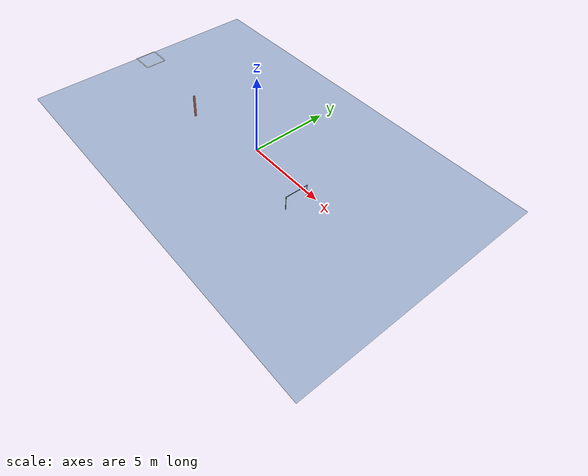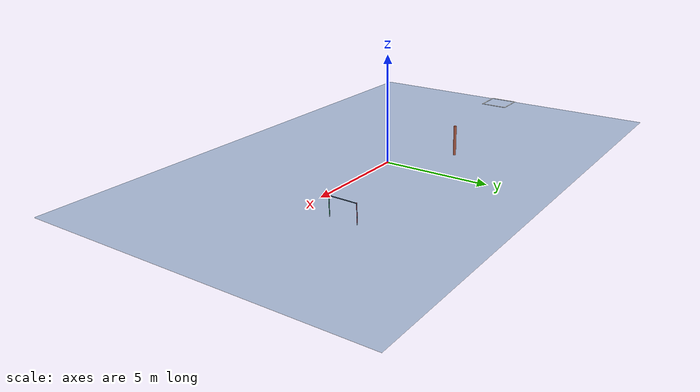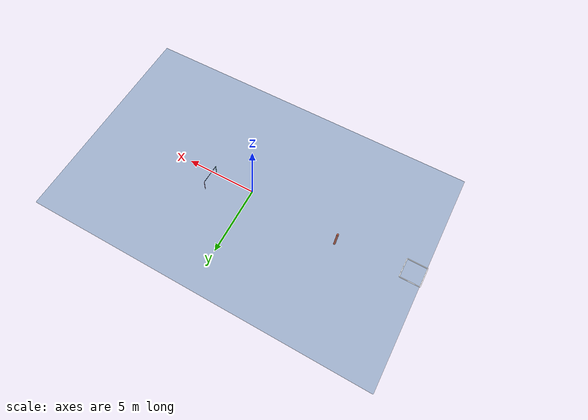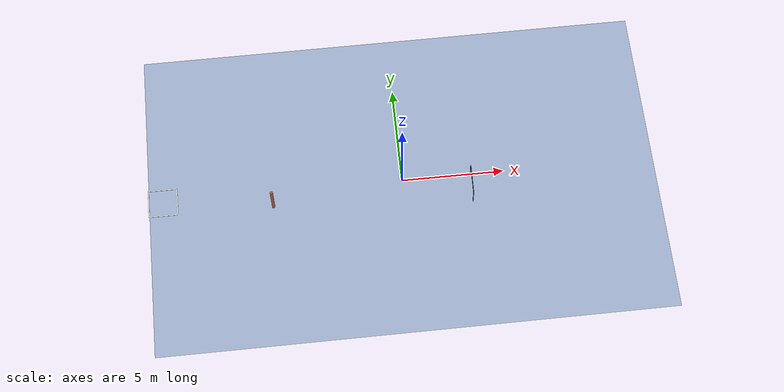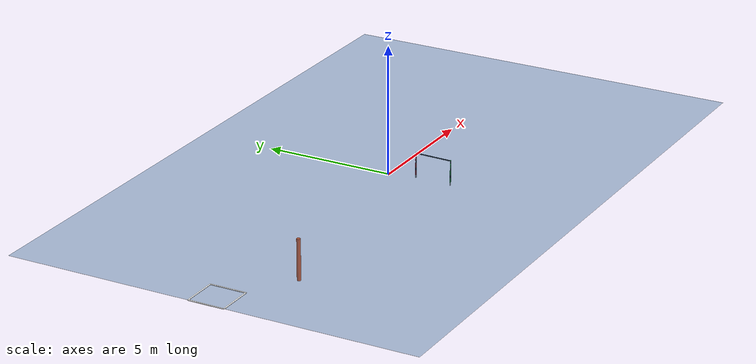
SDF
<sdf version="1.8">
 <world name="sauvc_competition_world">
  <plugin filename="gz-sim-physics-system" name="gz::sim::systems::Physics"/>
  <plugin filename="gz-sim-user-commands-system" name="gz::sim::systems::UserCommands"/>
  <plugin filename="gz-sim-scene-broadcaster-system" name="gz::sim::systems::SceneBroadcaster"/>
  <plugin filename="gz-sim-sensors-system" name="gz::sim::systems::Sensors">
   <render_engine>ogre2</render_engine>
  </plugin>
  <plugin filename="libgz-sim-imu-system.so" name="gz::sim::systems::Imu"/>
  <plugin filename="gz-sim-buoyancy-system" name="gz::sim::systems::Buoyancy">
   <graded_buoyancy>
    <default_density>1000</default_density>
    <density_change><above_depth>0</above_depth><density>1.2</density></density_change>
   </graded_buoyancy>
   <enable>bluerov2</enable>
  </plugin>
  <gravity>0 0 -9.81</gravity>
  <magnetic_field>6e-6 2.3e-5 -4.2e-5</magnetic_field>
  <atmosphere type="adiabatic"/>
  <scene>
   <ambient>0.3 0.4 0.5 1</ambient>
   <background>0.1 0.3 0.5 1</background>
   <shadows>true</shadows>
   <fog><color>0.2 0.4 0.5 1</color><type>linear</type><start>1</start><end>30</end><density>0.02</density></fog>
  </scene>
  <physics name="default" type="dart">
   <max_step_size>0.001</max_step_size>
   <real_time_factor>1.0</real_time_factor>
   <real_time_update_rate>1000</real_time_update_rate>
  </physics>
  <light type="directional" name="sun">
   <pose>0 0 10 0 0 0</pose>
   <diffuse>0.8 0.8 0.8 1</diffuse>
   <specular>0.2 0.2 0.2 1</specular>
   <direction>-0.5 0.1 -0.9</direction>
  </light>
  <light type="directional" name="underwater_light">
   <cast_shadows>false</cast_shadows>
   <pose>0 0 5 0 0 0</pose>
   <diffuse>0.6 0.7 0.8 1</diffuse>
   <specular>0.3 0.3 0.4 1</specular>
   <direction>0 0.2 -1</direction>
  </light>
  <model name="water_surface">
   <static>true</static>
   <link name="water_link">
    <visual name="water_visual">
     <geometry><box><size>25 16 0.01</size></box></geometry>
     <material>
      <ambient>0.1 0.3 0.5 0.6</ambient>
      <diffuse>0.2 0.4 0.6 0.4</diffuse>
      <specular>0.8 0.8 0.8 1</specular>
     </material>
     <transparency>0.5</transparency>
    </visual>
   </link>
  </model>
  <include>
   <uri>model://starting_zone</uri>
   <name>starting_zone</name>
   <pose>-11.83 0 0 0 0 0</pose>
   <static>true</static>
  </include>
  <include>
   <uri>model://final_gate</uri>
   <name>final_gate</name>
   <pose>3.5 0 -1.6 0 0 -1.6</pose>
   <static>true</static>
  </include>
  <include>
   <uri>model://orange_flare</uri>
   <name>orange_flare</name>
   <pose>-6.5 0 -1.6 0 0 0</pose>
   <static>true</static>
  </include>
 </world>
</sdf>

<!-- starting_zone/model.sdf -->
<sdf version="1.8">
  <!-- SAUVC 2026 Starting Zone
       140cm x 140cm marker at water surface
       Semi-transparent orange
  -->
  <model name="starting_zone">
    <static>true</static>

    <link name="marker">
      <pose>0 0 0.01 0 0 0</pose>
      <inertial>
        <mass>0.5</mass>
        <inertia>
          <ixx>0.01</ixx>
          <ixy>0</ixy>
          <ixz>0</ixz>
          <iyy>0.01</iyy>
          <iyz>0</iyz>
          <izz>0.01</izz>
        </inertia>
      </inertial>

      <!-- Outer frame -->
      <visual name="frame_north">
        <pose>0 0.7 0 0 0 0</pose>
        <geometry>
          <box>
            <size>1.4 0.05 0.02</size>
          </box>
        </geometry>
        <material>
          <ambient>1 1 1 1</ambient>
          <diffuse>1 1 1 1</diffuse>
        </material>
      </visual>

      <visual name="frame_south">
        <pose>0 -0.7 0 0 0 0</pose>
        <geometry>
          <box>
            <size>1.4 0.05 0.02</size>
          </box>
        </geometry>
        <material>
          <ambient>1 1 1 1</ambient>
          <diffuse>1 1 1 1</diffuse>
        </material>
      </visual>

      <visual name="frame_east">
        <pose>0.7 0 0 0 0 0</pose>
        <geometry>
          <box>
            <size>0.05 1.4 0.02</size>
          </box>
        </geometry>
        <material>
          <ambient>1 1 1 1</ambient>
          <diffuse>1 1 1 1</diffuse>
        </material>
      </visual>

      <visual name="frame_west">
        <pose>-0.7 0 0 0 0 0</pose>
        <geometry>
          <box>
            <size>0.05 1.4 0.02</size>
          </box>
        </geometry>
        <material>
          <ambient>1 1 1 1</ambient>
          <diffuse>1 1 1 1</diffuse>
        </material>
      </visual>
    </link>

  </model>
</sdf>

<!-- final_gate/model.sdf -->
<sdf version='1.7'>
  <model name='gate'>
    <link name='link_0'>
      <inertial>
        <mass>1</mass>
        <inertia>
          <ixx>0.145833</ixx>
          <ixy>0</ixy>
          <ixz>0</ixz>
          <iyy>0.145833</iyy>
          <iyz>0</iyz>
          <izz>0.125</izz>
        </inertia>
        <pose>0 0 0 0 -0 0</pose>
      </inertial>
      <pose>-0.75 0 0.5 0 -0 0</pose>
      <gravity>1</gravity>
      <self_collide>0</self_collide>
      <kinematic>0</kinematic>
      <enable_wind>0</enable_wind>
      <visual name='visual'>
        <pose>0 0 0 0 -0 0</pose>
        <geometry>
          <cylinder>
            <radius>0.02</radius>
            <length>1.0</length>
          </cylinder>
        </geometry>
        <material>
          <lighting>1</lighting>
          <script>
            <uri>file://media/materials/scripts/gazebo.material</uri>
            <name>Gazebo/Black</name>
          </script>
          <shader type='pixel'>
            <normal_map>__default__</normal_map>
          </shader>
          <ambient>0.5 0.1 0.1 1</ambient>
          <diffuse>1 0.2 0.2 1</diffuse>
          <specular>0.01 0.01 0.01 1</specular>
          <emissive>0 0 0 1</emissive>
        </material>
        <transparency>0</transparency>
        <cast_shadows>1</cast_shadows>
      </visual>
      <visual name='ModelPreview_4-link_0-visual_0'>
        <pose>0 0 -0.45 0 -0 0</pose>
        <geometry>
          <cylinder>
            <radius>0.021</radius>
            <length>0.1</length>
          </cylinder>
        </geometry>
        <material>
          <lighting>1</lighting>
          <script>
            <uri>file://media/materials/scripts/gazebo.material</uri>
            <name>Gazebo/White</name>
          </script>
          <shader type='pixel'>
            <normal_map>__default__</normal_map>
          </shader>
          <ambient>0.05 0.05 0.05 1</ambient>
          <diffuse>0.1 0.1 0.1 1</diffuse>
          <specular>0.01 0.01 0.01 1</specular>
          <emissive>0 0 0 1</emissive>
        </material>
        <transparency>0</transparency>
        <cast_shadows>1</cast_shadows>
      </visual>
      <visual name='ModelPreview_4-link_0-visual_1'>
        <pose>0 0 -0.3 0 -0 0</pose>
        <geometry>
          <cylinder>
            <radius>0.021</radius>
            <length>0.2</length>
          </cylinder>
        </geometry>
        <material>
          <lighting>1</lighting>
          <script>
            <uri>file://media/materials/scripts/gazebo.material</uri>
            <name>Gazebo/Red</name>
          </script>
          <shader type='pixel'>
            <normal_map>__default__</normal_map>
          </shader>
          <ambient>0.05 0.05 0.05 1</ambient>
          <diffuse>0.1 0.1 0.1 1</diffuse>
          <specular>0.01 0.01 0.01 1</specular>
          <emissive>0 0 0 1</emissive>
        </material>
        <transparency>0</transparency>
        <cast_shadows>1</cast_shadows>
      </visual>
      <visual name='ModelPreview_1-link_0-visual_2'>
        <pose>0 0 0 0 -0 0</pose>
        <geometry>
          <cylinder>
            <radius>0.021</radius>
            <length>0.2</length>
          </cylinder>
        </geometry>
        <material>
          <lighting>1</lighting>
          <script>
            <uri>file://media/materials/scripts/gazebo.material</uri>
            <name>Gazebo/Red</name>
          </script>
          <shader type='pixel'>
            <normal_map>__default__</normal_map>
          </shader>
          <ambient>0.05 0.05 0.05 1</ambient>
          <diffuse>0.1 0.1 0.1 1</diffuse>
          <specular>0.01 0.01 0.01 1</specular>
          <emissive>0 0 0 1</emissive>
        </material>
        <transparency>0</transparency>
        <cast_shadows>1</cast_shadows>
      </visual>
      <visual name='ModelPreview_4-link_0-visual_3'>
        <pose>0 0 0.3 0 -0 0</pose>
        <geometry>
          <cylinder>
            <radius>0.021</radius>
            <length>0.2</length>
          </cylinder>
        </geometry>
        <material>
          <lighting>1</lighting>
          <script>
            <uri>file://media/materials/scripts/gazebo.material</uri>
            <name>Gazebo/Red</name>
          </script>
          <shader type='pixel'>
            <normal_map>__default__</normal_map>
          </shader>
          <ambient>0.05 0.05 0.05 1</ambient>
          <diffuse>0.1 0.1 0.1 1</diffuse>
          <specular>0.01 0.01 0.01 1</specular>
          <emissive>0 0 0 1</emissive>
        </material>
        <transparency>0</transparency>
        <cast_shadows>1</cast_shadows>
      </visual>
      <visual name='ModelPreview_4-link_0-visual_4'>
        <pose>0 0 0.5 0 -0 0</pose>
        <geometry>
          <cylinder>
            <radius>0.021</radius>
            <length>0.05</length>
          </cylinder>
        </geometry>
        <material>
          <lighting>1</lighting>
          <script>
            <uri>file://media/materials/scripts/gazebo.material</uri>
            <name>Gazebo/Red</name>
          </script>
          <shader type='pixel'>
            <normal_map>__default__</normal_map>
          </shader>
          <ambient>0.05 0.05 0.05 1</ambient>
          <diffuse>0.1 0.1 0.1 1</diffuse>
          <specular>0.01 0.01 0.01 1</specular>
          <emissive>0 0 0 1</emissive>
        </material>
        <transparency>0</transparency>
        <cast_shadows>1</cast_shadows>
      </visual>
      <collision name='collision'>
        <laser_retro>0</laser_retro>
        <max_contacts>10</max_contacts>
        <pose>0 0 0 0 -0 0</pose>
        <geometry>
          <cylinder>
            <radius>0.02</radius>
            <length>1.0</length>
          </cylinder>
        </geometry>
        <surface>
          <friction>
            <ode>
              <mu>1</mu>
              <mu2>1</mu2>
              <fdir1>0 0 0</fdir1>
              <slip1>0</slip1>
              <slip2>0</slip2>
            </ode>
            <torsional>
              <coefficient>1</coefficient>
              <patch_radius>0</patch_radius>
              <surface_radius>0</surface_radius>
              <use_patch_radius>1</use_patch_radius>
              <ode>
                <slip>0</slip>
              </ode>
            </torsional>
          </friction>
          <bounce>
            <restitution_coefficient>0</restitution_coefficient>
            <threshold>1e+06</threshold>
          </bounce>
          <contact>
            <collide_without_contact>0</collide_without_contact>
            <collide_without_contact_bitmask>1</collide_without_contact_bitmask>
            <collide_bitmask>1</collide_bitmask>
            <ode>
              <soft_cfm>0</soft_cfm>
              <soft_erp>0.2</soft_erp>
              <kp>1e+13</kp>
              <kd>1</kd>
              <max_vel>0.01</max_vel>
              <min_depth>0</min_depth>
            </ode>
            <bullet>
              <split_impulse>1</split_impulse>
              <split_impulse_penetration_threshold>-0.01</split_impulse_penetration_threshold>
              <soft_cfm>0</soft_cfm>
              <soft_erp>0.2</soft_erp>
              <kp>1e+13</kp>
              <kd>1</kd>
            </bullet>
          </contact>
        </surface>
      </collision>
    </link>
    <link name='link_0_clone'>
      <inertial>
        <mass>1</mass>
        <inertia>
          <ixx>0.145833</ixx>
          <ixy>0</ixy>
          <ixz>0</ixz>
          <iyy>0.145833</iyy>
          <iyz>0</iyz>
          <izz>0.125</izz>
        </inertia>
        <pose>0 0 0 0 -0 0</pose>
      </inertial>
      <pose>0.75 0 0.5 0 -0 0</pose>
      <gravity>1</gravity>
      <self_collide>0</self_collide>
      <kinematic>0</kinematic>
      <enable_wind>0</enable_wind>
      <visual name='visual'>
        <pose>0 0 0 0 -0 0</pose>
        <geometry>
          <cylinder>
            <radius>0.02</radius>
            <length>1.0</length>
          </cylinder>
        </geometry>
        <material>
          <lighting>1</lighting>
          <script>
            <uri>file://media/materials/scripts/gazebo.material</uri>
            <name>Gazebo/Black</name>
          </script>
          <shader type='pixel'>
            <normal_map>__default__</normal_map>
          </shader>
          <ambient>0.1 0.5 0.1 1</ambient>
          <diffuse>0.2 1 0.2 1</diffuse>
          <specular>0.01 0.01 0.01 1</specular>
          <emissive>0 0 0 1</emissive>
        </material>
        <transparency>0</transparency>
        <cast_shadows>1</cast_shadows>
      </visual>
      <visual name='ModelPreview_4-link_0_clone-visual_0'>
        <pose>0 0 -0.45 0 -0 0</pose>
        <geometry>
          <cylinder>
            <radius>0.021</radius>
            <length>0.1</length>
          </cylinder>
        </geometry>
        <material>
          <lighting>1</lighting>
          <script>
            <uri>file://media/materials/scripts/gazebo.material</uri>
            <name>Gazebo/White</name>
          </script>
          <shader type='pixel'>
            <normal_map>__default__</normal_map>
          </shader>
          <ambient>0.05 0.05 0.05 1</ambient>
          <diffuse>0.1 0.1 0.1 1</diffuse>
          <specular>0.01 0.01 0.01 1</specular>
          <emissive>0 0 0 1</emissive>
        </material>
        <transparency>0</transparency>
        <cast_shadows>1</cast_shadows>
      </visual>
      <visual name='ModelPreview_4-link_0_clone-visual_1'>
        <pose>0 0 -0.3 0 -0 0</pose>
        <geometry>
          <cylinder>
            <radius>0.021</radius>
            <length>0.2</length>
          </cylinder>
        </geometry>
        <material>
          <lighting>1</lighting>
          <script>
            <uri>file://media/materials/scripts/gazebo.material</uri>
            <name>Gazebo/Green</name>
          </script>
          <shader type='pixel'>
            <normal_map>__default__</normal_map>
          </shader>
          <ambient>0.05 0.05 0.05 1</ambient>
          <diffuse>0.1 0.1 0.1 1</diffuse>
          <specular>0.01 0.01 0.01 1</specular>
          <emissive>0 0 0 1</emissive>
        </material>
        <transparency>0</transparency>
        <cast_shadows>1</cast_shadows>
      </visual>
      <visual name='ModelPreview_4-link_0_clone-visual_2'>
        <pose>0 0 0 0 -0 0</pose>
        <geometry>
          <cylinder>
            <radius>0.021</radius>
            <length>0.2</length>
          </cylinder>
        </geometry>
        <material>
          <lighting>1</lighting>
          <script>
            <uri>file://media/materials/scripts/gazebo.material</uri>
            <name>Gazebo/Green</name>
          </script>
          <shader type='pixel'>
            <normal_map>__default__</normal_map>
          </shader>
          <ambient>0.05 0.05 0.05 1</ambient>
          <diffuse>0.1 0.1 0.1 1</diffuse>
          <specular>0.01 0.01 0.01 1</specular>
          <emissive>0 0 0 1</emissive>
        </material>
        <transparency>0</transparency>
        <cast_shadows>1</cast_shadows>
      </visual>
      <visual name='ModelPreview_4-link_0_clone-visual_3'>
        <pose>0 0 0.3 0 -0 0</pose>
        <geometry>
          <cylinder>
            <radius>0.021</radius>
            <length>0.2</length>
          </cylinder>
        </geometry>
        <material>
          <lighting>1</lighting>
          <script>
            <uri>file://media/materials/scripts/gazebo.material</uri>
            <name>Gazebo/Green</name>
          </script>
          <shader type='pixel'>
            <normal_map>__default__</normal_map>
          </shader>
          <ambient>0.05 0.05 0.05 1</ambient>
          <diffuse>0.1 0.1 0.1 1</diffuse>
          <specular>0.01 0.01 0.01 1</specular>
          <emissive>0 0 0 1</emissive>
        </material>
        <transparency>0</transparency>
        <cast_shadows>1</cast_shadows>
      </visual>
      <visual name='ModelPreview_4-link_0_clone-visual_4'>
        <pose>0 0 0.5 0 -0 0</pose>
        <geometry>
          <cylinder>
            <radius>0.021</radius>
            <length>0.05</length>
          </cylinder>
        </geometry>
        <material>
          <lighting>1</lighting>
          <script>
            <uri>file://media/materials/scripts/gazebo.material</uri>
            <name>Gazebo/Green</name>
          </script>
          <shader type='pixel'>
            <normal_map>__default__</normal_map>
          </shader>
          <ambient>0.05 0.05 0.05 1</ambient>
          <diffuse>0.1 0.1 0.1 1</diffuse>
          <specular>0.01 0.01 0.01 1</specular>
          <emissive>0 0 0 1</emissive>
        </material>
        <transparency>0</transparency>
        <cast_shadows>1</cast_shadows>
      </visual>
      <collision name='collision'>
        <laser_retro>0</laser_retro>
        <max_contacts>10</max_contacts>
        <pose>0 0 0 0 -0 0</pose>
        <geometry>
          <cylinder>
            <radius>0.02</radius>
            <length>1.5</length>
          </cylinder>
        </geometry>
        <surface>
          <friction>
            <ode>
              <mu>1</mu>
              <mu2>1</mu2>
              <fdir1>0 0 0</fdir1>
              <slip1>0</slip1>
              <slip2>0</slip2>
            </ode>
            <torsional>
              <coefficient>1</coefficient>
              <patch_radius>0</patch_radius>
              <surface_radius>0</surface_radius>
              <use_patch_radius>1</use_patch_radius>
              <ode>
                <slip>0</slip>
              </ode>
            </torsional>
          </friction>
          <bounce>
            <restitution_coefficient>0</restitution_coefficient>
            <threshold>1e+06</threshold>
          </bounce>
          <contact>
            <collide_without_contact>0</collide_without_contact>
            <collide_without_contact_bitmask>1</collide_without_contact_bitmask>
            <collide_bitmask>1</collide_bitmask>
            <ode>
              <soft_cfm>0</soft_cfm>
              <soft_erp>0.2</soft_erp>
              <kp>1e+13</kp>
              <kd>1</kd>
              <max_vel>0.01</max_vel>
              <min_depth>0</min_depth>
            </ode>
            <bullet>
              <split_impulse>1</split_impulse>
              <split_impulse_penetration_threshold>-0.01</split_impulse_penetration_threshold>
              <soft_cfm>0</soft_cfm>
              <soft_erp>0.2</soft_erp>
              <kp>1e+13</kp>
              <kd>1</kd>
            </bullet>
          </contact>
        </surface>
      </collision>
    </link>
    <link name='link_0_clone_0'>
      <inertial>
        <mass>1</mass>
        <inertia>
          <ixx>0.145833</ixx>
          <ixy>0</ixy>
          <ixz>0</ixz>
          <iyy>0.145833</iyy>
          <iyz>0</iyz>
          <izz>0.125</izz>
        </inertia>
        <pose>0 0 0 0 -0 0</pose>
      </inertial>
      <pose>0 0 1.0 3.14159 -1.57079 3.14159</pose>
      <gravity>1</gravity>
      <self_collide>0</self_collide>
      <kinematic>0</kinematic>
      <enable_wind>0</enable_wind>
      <visual name='visual'>
        <pose>0 0 0 0 -0 0</pose>
        <geometry>
          <cylinder>
            <radius>0.02</radius>
            <length>1.5</length>
          </cylinder>
        </geometry>
        <material>
          <lighting>1</lighting>
          <script>
            <uri>file://media/materials/scripts/gazebo.material</uri>
            <name>Gazebo/Black</name>
          </script>
          <shader type='pixel'>
            <normal_map>__default__</normal_map>
          </shader>
          <ambient>0.05 0.05 0.05 1</ambient>
          <diffuse>0.1 0.1 0.1 1</diffuse>
          <specular>0.01 0.01 0.01 1</specular>
          <emissive>0 0 0 1</emissive>
        </material>
        <transparency>0</transparency>
        <cast_shadows>1</cast_shadows>
      </visual>
      <collision name='collision'>
        <laser_retro>0</laser_retro>
        <max_contacts>10</max_contacts>
        <pose>0 0 0 0 -0 0</pose>
        <geometry>
          <cylinder>
            <radius>0.02</radius>
            <length>1.5</length>
          </cylinder>
        </geometry>
        <surface>
          <friction>
            <ode>
              <mu>1</mu>
              <mu2>1</mu2>
              <fdir1>0 0 0</fdir1>
              <slip1>0</slip1>
              <slip2>0</slip2>
            </ode>
            <torsional>
              <coefficient>1</coefficient>
              <patch_radius>0</patch_radius>
              <surface_radius>0</surface_radius>
              <use_patch_radius>1</use_patch_radius>
              <ode>
                <slip>0</slip>
              </ode>
            </torsional>
          </friction>
          <bounce>
            <restitution_coefficient>0</restitution_coefficient>
            <threshold>1e+06</threshold>
          </bounce>
          <contact>
            <collide_without_contact>0</collide_without_contact>
            <collide_without_contact_bitmask>1</collide_without_contact_bitmask>
            <collide_bitmask>1</collide_bitmask>
            <ode>
              <soft_cfm>0</soft_cfm>
              <soft_erp>0.2</soft_erp>
              <kp>1e+13</kp>
              <kd>1</kd>
              <max_vel>0.01</max_vel>
              <min_depth>0</min_depth>
            </ode>
            <bullet>
              <split_impulse>1</split_impulse>
              <split_impulse_penetration_threshold>-0.01</split_impulse_penetration_threshold>
              <soft_cfm>0</soft_cfm>
              <soft_erp>0.2</soft_erp>
              <kp>1e+13</kp>
              <kd>1</kd>
            </bullet>
          </contact>
        </surface>
      </collision>
    </link>
    <joint name='link_0_clone_0_JOINT_0' type='fixed'>
      <parent>link_0_clone_0</parent>
      <child>link_0</child>
      <pose>0 0 0 0 -0 0</pose>
      <physics>
        <ode>
          <limit>
            <cfm>0</cfm>
            <erp>0.2</erp>
          </limit>
          <suspension>
            <cfm>0</cfm>
            <erp>0.2</erp>
          </suspension>
        </ode>
      </physics>
    </joint>
    <joint name='link_0_clone_0_JOINT_1' type='fixed'>
      <parent>link_0_clone_0</parent>
      <child>link_0_clone</child>
      <pose>0 0 0 0 -0 0</pose>
      <physics>
        <ode>
          <limit>
            <cfm>0</cfm>
            <erp>0.2</erp>
          </limit>
          <suspension>
            <cfm>0</cfm>
            <erp>0.2</erp>
          </suspension>
        </ode>
      </physics>
    </joint>
    <static>1</static>
    <allow_auto_disable>1</allow_auto_disable>
  </model>
</sdf>

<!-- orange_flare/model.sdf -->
<sdf version="1.8">
  <!-- SAUVC 2026 Orange Flare
       Diameter: ~15cm, Height: 1.6m (bottom to top of pool)
       Color: Orange
  -->
  <model name="orange_flare">
    <static>true</static>

    <link name="flare">
      <pose>0 0 0.8 0 0 0</pose>
      <inertial>
        <mass>1.0</mass>
        <inertia>
          <ixx>0.1</ixx>
          <ixy>0</ixy>
          <ixz>0</ixz>
          <iyy>0.1</iyy>
          <iyz>0</iyz>
          <izz>0.01</izz>
        </inertia>
      </inertial>

      <visual name="flare_visual">
        <geometry>
          <cylinder>
            <radius>0.075</radius>
            <length>1.6</length>
          </cylinder>
        </geometry>
        <material>
          <ambient>1.0 0.35 0.05 1</ambient>
          <diffuse>1.0 0.3 0.0 1</diffuse>
          <specular>0.6 0.3 0.1 1</specular>
        </material>
      </visual>

      <collision name="flare_collision">
        <geometry>
          <cylinder>
            <radius>0.075</radius>
            <length>1.6</length>
          </cylinder>
        </geometry>
      </collision>
    </link>

  </model>
</sdf>
